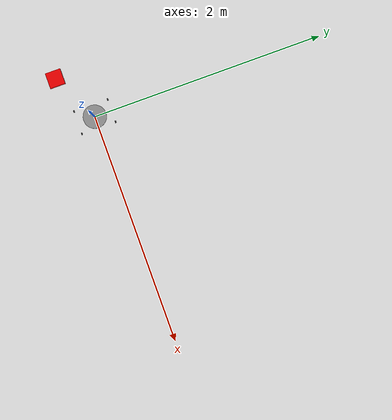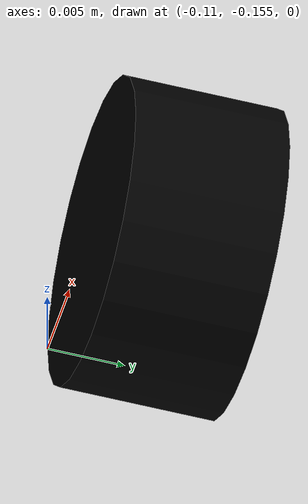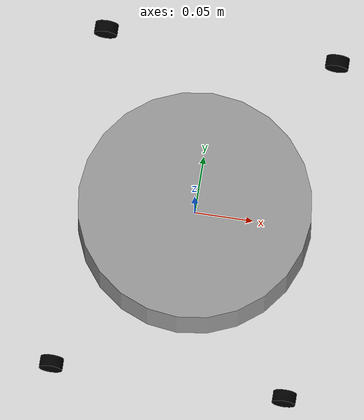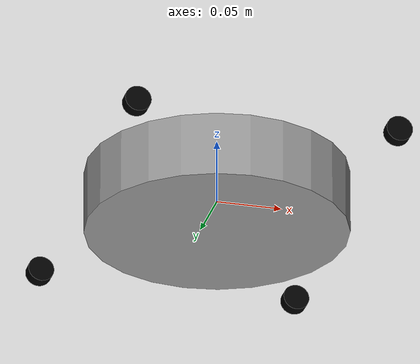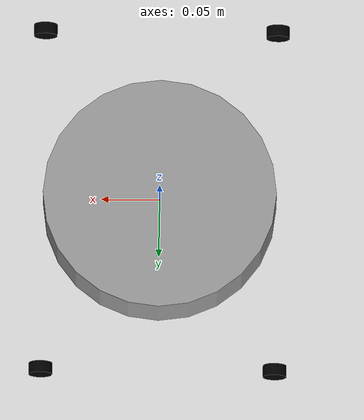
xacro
<?xml version="1.0"?>

 <robot xmlns:xacro="http://www.ros.org/wiki/xacro" name="camera">

	 <xacro:property name="length_wheel" value="0.01" />
     <xacro:property name="radius_wheel" value="0.01" />
     <xacro:macro name="default_inertial" params="mass">
                <inertial>
                        <mass value="${mass}" />
                        <inertia ixx="1.0" ixy="0.0" ixz="0.0"
                                 iyy="1.0" iyz="0.0"
                                 izz="1.0" />
                </inertial>
     </xacro:macro>

	<!--base_link-->
	<link name = "base_link">
		<collision>
			<origin xyz = "0 0 0" rpy = "0 0 0"/>
			<geometry>
				<cylinder length = "0.005" radius = "0.001"/>
			</geometry>
		</collision>
		<visual>
			<origin xyz = "0 0 0" rpy = "0 0 0"/>
			<geometry>
				<cylinder length = "0.05" radius = "0.1"/>
			</geometry>
		</visual>
         <xacro:default_inertial mass="10"/>
	</link>

	<link name="wheel_1">
        <visual>
                 <geometry>
                     <cylinder length="${length_wheel}" radius="${radius_wheel}"/>
                 </geometry>
             <origin rpy="0 0 0" xyz="0 0 0"/>
             <material name="black">
                 <color rgba="0 0 0 1"/>
             </material>
         </visual>
         <collision>
             <geometry>
                     <cylinder length="${length_wheel}" radius="${radius_wheel}"/>
             </geometry>
         </collision>
         <xacro:default_inertial mass="1"/>
     </link>

	<link name="wheel_2">
        <visual>
                 <geometry>
                     <cylinder length="${length_wheel}" radius="${radius_wheel}"/>
                 </geometry>
             <origin rpy="0 0 0" xyz="0 0 0"/>
             <material name="black">
                 <color rgba="0 0 0 1"/>
             </material>
         </visual>
         <collision>
             <geometry>
                     <cylinder length="${length_wheel}" radius="${radius_wheel}"/>
             </geometry>
         </collision>
         <xacro:default_inertial mass="1"/>
     </link>

	<link name="wheel_3">
        <visual>
                 <geometry>
                     <cylinder length="${length_wheel}" radius="${radius_wheel}"/>
                 </geometry>
             <origin rpy="0 0 0" xyz="0 0 0"/>
             <material name="black">
                 <color rgba="0 0 0 1"/>
             </material>
         </visual>
         <collision>
             <geometry>
                     <cylinder length="${length_wheel}" radius="${radius_wheel}"/>
             </geometry>
         </collision>
         <xacro:default_inertial mass="1"/>
     </link>

	<link name="wheel_4">
        <visual>
                 <geometry>
                     <cylinder length="${length_wheel}" radius="${radius_wheel}"/>
                 </geometry>
             <origin rpy="0 0 0" xyz="0 0 0"/>
             <material name="black">
                 <color rgba="0 0 0 1"/>
             </material>
         </visual>
         <collision>
             <geometry>
                     <cylinder length="${length_wheel}" radius="${radius_wheel}"/>
             </geometry>
         </collision>
         <xacro:default_inertial mass="1"/>
     </link>

   <!-- Camera -->
   <link name="camera_link">
     <collision>
       <origin xyz="0 0 0" rpy="0 0 0"/>
       <geometry>
     <box size="0.05 0.05 0.05"/>
       </geometry>
     </collision>

     <visual>
       <origin xyz="0 0 0" rpy="0 0 0"/>
       <geometry>
     <box size="0.1 0.1 0.1"/>
       </geometry>
       <material name="red">
     <color rgba="1 0 0 1"/>
       </material>
     </visual>
      <inertial>
       <mass value="0" />
       <origin xyz="0 0 0" rpy="0 0 0"/>
       <inertia ixx="1e-6" ixy="0" ixz="0" iyy="1e-6" iyz="0" izz="1e-6" />
     </inertial>
   </link>

	<joint name = "camera_to_base" type = "fixed">
		<parent link = "base_link"/>
		<child link = "camera_link"/>
		<origin xyz = "0 0 9.525" rpy = "0 1.57075 0"/>
	</joint>
	<joint name="base_to_wheel1" type="continuous">
     <parent link="base_link"/>
     <child link="wheel_1"/>
     <origin rpy="-1.5707 0 0" xyz="0.1 0.15 0"/>
     <axis xyz="0 0 1" />
   </joint>

  <joint name="base_to_wheel2" type="continuous">
    <axis xyz="0 0 1" />
    <anchor xyz="0 0 0" />
    <limit effort="100" velocity="100" />
    <parent link="base_link"/>
    <child link="wheel_2"/>
    <origin rpy="-1.5707 0 0" xyz="-0.1 0.15 0"/>
 </joint>

  <joint name="base_to_wheel3" type="continuous">
    <parent link="base_link"/>
    <axis xyz="0 0 1" />
    <child link="wheel_3"/>
    <origin rpy="-1.5707 0 0" xyz="0.1 -0.15 0"/>
  </joint>

  <joint name="base_to_wheel4" type="continuous">
    <parent link="base_link"/>
    <axis xyz="0 0 1" />
    <child link="wheel_4"/>
    <origin rpy="-1.5707 0 0" xyz="-0.1 -0.15 0"/>
  </joint>

  <gazebo reference="camera_link">
     <material>Gazebo/Red</material>
  </gazebo>

  <gazebo reference="base_link">
     <material>Gazebo/Grey</material>
  </gazebo>

  <gazebo reference="wheel_1">
     <material>Gazebo/Black</material>
  </gazebo>
  <gazebo reference="wheel_2">
     <material>Gazebo/Black</material>
  </gazebo>
  <gazebo reference="wheel_3">
     <material>Gazebo/Black</material>
  </gazebo>
  <gazebo reference="wheel_4">
     <material>Gazebo/Black</material>
  </gazebo>

  <gazebo reference = "camera_link">
     <sensor type="camera" name="camera2">
       <update_rate>30.0</update_rate>
       <camera name="head">
         <horizontal_fov>1.3962634</horizontal_fov>
         <image>
           <width>800</width>
           <height>800</height>
           <format>R8G8B8</format>
         </image>
         <clip>
           <near>0.02</near>
           <far>300</far>
         </clip>
         <noise>
           <type>gaussian</type>
           <mean>0.0</mean>
            <stddev>0.007</stddev>
         </noise>
       </camera>

       <plugin name="camera_controller" filename="libgazebo_ros_camera.so">
         <alwaysOn>true</alwaysOn>
         <updateRate>0.0</updateRate>
         <cameraName>camera2</cameraName>
         <imageTopicName>image_raw</imageTopicName>
         <cameraInfoTopicName>camera_info</cameraInfoTopicName>
         <frameName>camera_link</frameName>
         <hackBaseline>0.07</hackBaseline>
         <distortionK1>0.0</distortionK1>
         <distortionK2>0.0</distortionK2>
         <distortionK3>0.0</distortionK3>
         <distortionT1>0.0</distortionT1>
         <distortionT2>0.0</distortionT2>
       </plugin>
      </sensor>
	</gazebo>

	<gazebo>
     <plugin name="skid_steer_drive_controller" filename="libgazebo_ros_skid_steer_drive.so">
     <updateRate>100.0</updateRate>
     <robotNamespace>uav2/</robotNamespace>
     <leftFrontJoint>base_to_wheel1</leftFrontJoint>
     <rightFrontJoint>base_to_wheel3</rightFrontJoint>
     <leftRearJoint>base_to_wheel2</leftRearJoint>
     <rightRearJoint>base_to_wheel4</rightRearJoint>
     <wheelSeparation>4</wheelSeparation>
     <wheelDiameter>0.1</wheelDiameter>
     <commandTopic>cmd_vel</commandTopic>
     <odometryTopic>odom</odometryTopic>
     <robotBaseFrame>base_footprint</robotBaseFrame>
     <odometryFrame>odom</odometryFrame>
     <torque>2</torque>
     <topicName>cmd_vel</topicName>
     <broadcastTF>1</broadcastTF>
   </plugin>
 </gazebo>
</robot>
